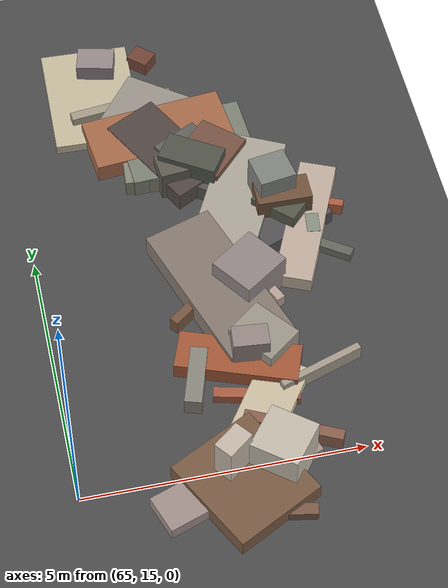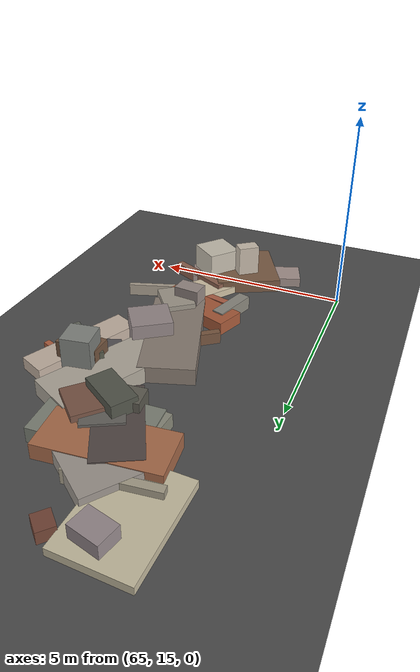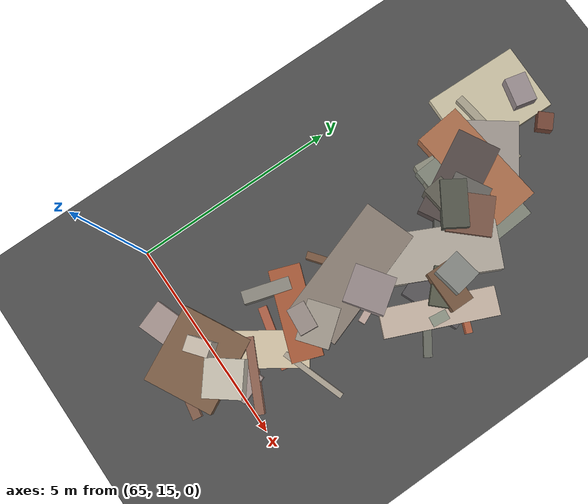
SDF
<sdf version="1.6">
 <world name="navitas_arena">
  <model name="ground_plane">
   <static>true</static>
   <link name="link">
    <collision name="collision">
     <geometry><plane><normal>0 0 1</normal><size>400 400</size></plane></geometry>
     <surface><friction><ode><mu>0.800</mu><mu2>0.800</mu2></ode></friction></surface>
    </collision>
    <visual name="visual">
     <cast_shadows>false</cast_shadows>
     <geometry><plane><normal>0 0 1</normal><size>400 400</size></plane></geometry>
     <material>
      <specular>0.04 0.04 0.04 1</specular>
      <script>
       <uri>file://media/materials/scripts/navitas_asphalt.material</uri>
       <name>Navitas/RealArenaAsphalt</name>
      </script>
     </material>
    </visual>
   </link>
  </model>
  <model name="deb_zor_40">
   <static>true</static>
   <pose>68.226 16.376 0.000 0 0 0</pose>
   <link name="link">
    <collision name="col_0">
     <pose>-0.002 -0.699 0.096 0.000 0.000 0.973</pose>
     <geometry><box><size>2.898 0.864 0.193</size></box></geometry>
    </collision>
    <visual name="vis_0">
     <pose>-0.002 -0.699 0.096 0.000 0.000 0.973</pose>
     <geometry><box><size>2.898 0.864 0.193</size></box></geometry>
     <material>
      <ambient>0.75 0.70 0.59 1</ambient>
      <diffuse>0.81 0.75 0.64 1</diffuse>
      <specular>0.05 0.05 0.045 1</specular>
     </material>
    </visual>
    <collision name="col_1">
     <pose>0.140 -0.033 0.094 0.000 0.000 -0.233</pose>
     <geometry><box><size>1.523 0.206 0.187</size></box></geometry>
    </collision>
    <visual name="vis_1">
     <pose>0.140 -0.033 0.094 0.000 0.000 -0.233</pose>
     <geometry><box><size>1.523 0.206 0.187</size></box></geometry>
     <material>
      <ambient>0.62 0.34 0.25 1</ambient>
      <diffuse>0.67 0.37 0.27 1</diffuse>
      <specular>0.05 0.05 0.045 1</specular>
     </material>
    </visual>
    <collision name="col_2">
     <pose>0.194 0.761 0.404 0.000 0.000 -0.092</pose>
     <geometry><box><size>0.649 0.437 0.809</size></box></geometry>
    </collision>
    <visual name="vis_2">
     <pose>0.194 0.761 0.404 0.000 0.000 -0.092</pose>
     <geometry><box><size>0.649 0.437 0.809</size></box></geometry>
     <material>
      <ambient>0.54 0.50 0.48 1</ambient>
      <diffuse>0.59 0.54 0.52 1</diffuse>
      <specular>0.05 0.05 0.045 1</specular>
     </material>
    </visual>
    <collision name="col_3">
     <pose>-0.839 0.446 0.183 0.000 0.000 1.275</pose>
     <geometry><box><size>1.146 0.309 0.365</size></box></geometry>
    </collision>
    <visual name="vis_3">
     <pose>-0.839 0.446 0.183 0.000 0.000 1.275</pose>
     <geometry><box><size>1.146 0.309 0.365</size></box></geometry>
     <material>
      <ambient>0.50 0.49 0.46 1</ambient>
      <diffuse>0.54 0.53 0.49 1</diffuse>
      <specular>0.05 0.05 0.045 1</specular>
     </material>
    </visual>
   </link>
  </model>
  <model name="deb_zor_46">
   <static>true</static>
   <pose>67.939 21.740 0.000 0 0 0</pose>
   <link name="link">
    <collision name="col_0">
     <pose>0.492 -0.057 0.188 0.000 0.000 0.809</pose>
     <geometry><box><size>1.128 0.798 0.376</size></box></geometry>
    </collision>
    <visual name="vis_0">
     <pose>0.492 -0.057 0.188 0.000 0.000 0.809</pose>
     <geometry><box><size>1.128 0.798 0.376</size></box></geometry>
     <material>
      <ambient>0.47 0.35 0.25 1</ambient>
      <diffuse>0.50 0.38 0.27 1</diffuse>
      <specular>0.05 0.05 0.045 1</specular>
     </material>
    </visual>
    <collision name="col_1">
     <pose>-0.100 0.235 0.192 0.000 0.000 2.061</pose>
     <geometry><box><size>2.197 1.077 0.384</size></box></geometry>
    </collision>
    <visual name="vis_1">
     <pose>-0.100 0.235 0.192 0.000 0.000 2.061</pose>
     <geometry><box><size>2.197 1.077 0.384</size></box></geometry>
     <material>
      <ambient>0.30 0.26 0.25 1</ambient>
      <diffuse>0.32 0.28 0.27 1</diffuse>
      <specular>0.05 0.05 0.045 1</specular>
     </material>
    </visual>
    <collision name="col_2">
     <pose>0.318 -0.268 0.369 0.000 0.000 2.578</pose>
     <geometry><box><size>1.129 0.616 0.739</size></box></geometry>
    </collision>
    <visual name="vis_2">
     <pose>0.318 -0.268 0.369 0.000 0.000 2.578</pose>
     <geometry><box><size>1.129 0.616 0.739</size></box></geometry>
     <material>
      <ambient>0.30 0.31 0.27 1</ambient>
      <diffuse>0.32 0.33 0.29 1</diffuse>
      <specular>0.05 0.05 0.045 1</specular>
     </material>
    </visual>
    <collision name="col_3">
     <pose>0.042 -0.341 0.309 0.000 0.000 0.113</pose>
     <geometry><box><size>0.805 0.523 0.619</size></box></geometry>
    </collision>
    <visual name="vis_3">
     <pose>0.042 -0.341 0.309 0.000 0.000 0.113</pose>
     <geometry><box><size>0.805 0.523 0.619</size></box></geometry>
     <material>
      <ambient>0.34 0.33 0.30 1</ambient>
      <diffuse>0.37 0.36 0.32 1</diffuse>
      <specular>0.05 0.05 0.045 1</specular>
     </material>
    </visual>
    <collision name="col_4">
     <pose>0.708 -0.065 0.267 0.000 0.000 0.824</pose>
     <geometry><box><size>1.078 0.964 0.534</size></box></geometry>
    </collision>
    <visual name="vis_4">
     <pose>0.708 -0.065 0.267 0.000 0.000 0.824</pose>
     <geometry><box><size>1.078 0.964 0.534</size></box></geometry>
     <material>
      <ambient>0.43 0.31 0.25 1</ambient>
      <diffuse>0.47 0.33 0.27 1</diffuse>
      <specular>0.05 0.05 0.045 1</specular>
     </material>
    </visual>
    <collision name="col_5">
     <pose>0.239 0.260 0.219 0.000 0.000 2.070</pose>
     <geometry><box><size>0.533 0.937 0.439</size></box></geometry>
    </collision>
    <visual name="vis_5">
     <pose>0.239 0.260 0.219 0.000 0.000 2.070</pose>
     <geometry><box><size>0.533 0.937 0.439</size></box></geometry>
     <material>
      <ambient>0.36 0.35 0.33 1</ambient>
      <diffuse>0.39 0.38 0.36 1</diffuse>
      <specular>0.05 0.05 0.045 1</specular>
     </material>
    </visual>
   </link>
  </model>
  <model name="deb_zor_49">
   <static>true</static>
   <pose>67.663 22.526 0.000 0 0 0</pose>
   <link name="link">
    <collision name="col_0">
     <pose>-0.438 0.760 0.175 0.000 0.000 3.270</pose>
     <geometry><box><size>2.010 0.194 0.351</size></box></geometry>
    </collision>
    <visual name="vis_0">
     <pose>-0.438 0.760 0.175 0.000 0.000 3.270</pose>
     <geometry><box><size>2.010 0.194 0.351</size></box></geometry>
     <material>
      <ambient>0.60 0.57 0.50 1</ambient>
      <diffuse>0.65 0.62 0.54 1</diffuse>
      <specular>0.05 0.05 0.045 1</specular>
     </material>
    </visual>
    <collision name="col_1">
     <pose>-0.066 -0.191 0.169 0.000 0.000 1.496</pose>
     <geometry><box><size>2.142 1.120 0.338</size></box></geometry>
    </collision>
    <visual name="vis_1">
     <pose>-0.066 -0.191 0.169 0.000 0.000 1.496</pose>
     <geometry><box><size>2.142 1.120 0.338</size></box></geometry>
     <material>
      <ambient>0.50 0.50 0.45 1</ambient>
      <diffuse>0.54 0.54 0.48 1</diffuse>
      <specular>0.05 0.05 0.045 1</specular>
     </material>
    </visual>
    <collision name="col_2">
     <pose>0.614 -0.462 0.185 0.000 0.000 3.203</pose>
     <geometry><box><size>2.415 1.467 0.369</size></box></geometry>
    </collision>
    <visual name="vis_2">
     <pose>0.614 -0.462 0.185 0.000 0.000 3.203</pose>
     <geometry><box><size>2.415 1.467 0.369</size></box></geometry>
     <material>
      <ambient>0.46 0.47 0.43 1</ambient>
      <diffuse>0.49 0.51 0.46 1</diffuse>
      <specular>0.05 0.05 0.045 1</specular>
     </material>
    </visual>
    <collision name="col_3">
     <pose>0.140 -0.040 0.186 0.000 0.000 3.249</pose>
     <geometry><box><size>2.728 1.170 0.373</size></box></geometry>
    </collision>
    <visual name="vis_3">
     <pose>0.140 -0.040 0.186 0.000 0.000 3.249</pose>
     <geometry><box><size>2.728 1.170 0.373</size></box></geometry>
     <material>
      <ambient>0.61 0.39 0.27 1</ambient>
      <diffuse>0.66 0.42 0.29 1</diffuse>
      <specular>0.05 0.05 0.045 1</specular>
     </material>
    </visual>
   </link>
  </model>
  <model name="deb_zor_80">
   <static>true</static>
   <pose>69.305 20.393 0.000 0 0 0</pose>
   <link name="link">
    <collision name="col_0">
     <pose>0.421 -0.129 0.362 0.000 0.000 -0.009</pose>
     <geometry><box><size>1.027 0.552 0.723</size></box></geometry>
    </collision>
    <visual name="vis_0">
     <pose>0.421 -0.129 0.362 0.000 0.000 -0.009</pose>
     <geometry><box><size>1.027 0.552 0.723</size></box></geometry>
     <material>
      <ambient>0.41 0.30 0.22 1</ambient>
      <diffuse>0.45 0.33 0.24 1</diffuse>
      <specular>0.05 0.05 0.045 1</specular>
     </material>
    </visual>
    <collision name="col_1">
     <pose>0.385 0.144 0.112 0.000 0.000 1.986</pose>
     <geometry><box><size>0.452 0.294 0.224</size></box></geometry>
    </collision>
    <visual name="vis_1">
     <pose>0.385 0.144 0.112 0.000 0.000 1.986</pose>
     <geometry><box><size>0.452 0.294 0.224</size></box></geometry>
     <material>
      <ambient>0.32 0.30 0.27 1</ambient>
      <diffuse>0.35 0.32 0.29 1</diffuse>
      <specular>0.05 0.05 0.045 1</specular>
     </material>
    </visual>
    <collision name="col_2">
     <pose>-0.458 0.287 0.167 0.000 0.000 -0.645</pose>
     <geometry><box><size>1.554 0.288 0.334</size></box></geometry>
    </collision>
    <visual name="vis_2">
     <pose>-0.458 0.287 0.167 0.000 0.000 -0.645</pose>
     <geometry><box><size>1.554 0.288 0.334</size></box></geometry>
     <material>
      <ambient>0.31 0.31 0.28 1</ambient>
      <diffuse>0.33 0.33 0.31 1</diffuse>
      <specular>0.05 0.05 0.045 1</specular>
     </material>
    </visual>
    <collision name="col_3">
     <pose>-0.360 -0.134 0.114 0.000 0.000 -0.156</pose>
     <geometry><box><size>0.489 0.237 0.228</size></box></geometry>
    </collision>
    <visual name="vis_3">
     <pose>-0.360 -0.134 0.114 0.000 0.000 -0.156</pose>
     <geometry><box><size>0.489 0.237 0.228</size></box></geometry>
     <material>
      <ambient>0.43 0.31 0.25 1</ambient>
      <diffuse>0.46 0.33 0.27 1</diffuse>
      <specular>0.05 0.05 0.045 1</specular>
     </material>
    </visual>
    <collision name="col_4">
     <pose>0.337 -0.249 0.286 0.000 0.000 0.808</pose>
     <geometry><box><size>0.499 0.914 0.573</size></box></geometry>
    </collision>
    <visual name="vis_4">
     <pose>0.337 -0.249 0.286 0.000 0.000 0.808</pose>
     <geometry><box><size>0.499 0.914 0.573</size></box></geometry>
     <material>
      <ambient>0.32 0.33 0.27 1</ambient>
      <diffuse>0.34 0.35 0.29 1</diffuse>
      <specular>0.05 0.05 0.045 1</specular>
     </material>
    </visual>
    <collision name="col_5">
     <pose>-0.378 0.109 0.203 0.000 0.000 1.113</pose>
     <geometry><box><size>2.975 1.182 0.406</size></box></geometry>
    </collision>
    <visual name="vis_5">
     <pose>-0.378 0.109 0.203 0.000 0.000 1.113</pose>
     <geometry><box><size>2.975 1.182 0.406</size></box></geometry>
     <material>
      <ambient>0.63 0.60 0.56 1</ambient>
      <diffuse>0.68 0.65 0.60 1</diffuse>
      <specular>0.05 0.05 0.045 1</specular>
     </material>
    </visual>
    <collision name="col_6">
     <pose>0.276 0.119 0.554 0.000 0.000 1.738</pose>
     <geometry><box><size>0.651 0.696 1.108</size></box></geometry>
    </collision>
    <visual name="vis_6">
     <pose>0.276 0.119 0.554 0.000 0.000 1.738</pose>
     <geometry><box><size>0.651 0.696 1.108</size></box></geometry>
     <material>
      <ambient>0.47 0.48 0.46 1</ambient>
      <diffuse>0.51 0.52 0.50 1</diffuse>
      <specular>0.05 0.05 0.045 1</specular>
     </material>
    </visual>
   </link>
  </model>
  <model name="deb_zor_191">
   <static>true</static>
   <pose>67.463 23.916 0.000 0 0 0</pose>
   <link name="link">
    <collision name="col_0">
     <pose>-0.752 -0.159 0.092 0.000 0.000 1.546</pose>
     <geometry><box><size>2.383 1.693 0.185</size></box></geometry>
    </collision>
    <visual name="vis_0">
     <pose>-0.752 -0.159 0.092 0.000 0.000 1.546</pose>
     <geometry><box><size>2.383 1.693 0.185</size></box></geometry>
     <material>
      <ambient>0.72 0.68 0.58 1</ambient>
      <diffuse>0.78 0.74 0.63 1</diffuse>
      <specular>0.05 0.05 0.045 1</specular>
     </material>
    </visual>
    <collision name="col_1">
     <pose>0.383 0.610 0.142 0.000 0.000 2.402</pose>
     <geometry><box><size>0.431 0.377 0.283</size></box></geometry>
    </collision>
    <visual name="vis_1">
     <pose>0.383 0.610 0.142 0.000 0.000 2.402</pose>
     <geometry><box><size>0.431 0.377 0.283</size></box></geometry>
     <material>
      <ambient>0.41 0.25 0.19 1</ambient>
      <diffuse>0.45 0.27 0.21 1</diffuse>
      <specular>0.05 0.05 0.045 1</specular>
     </material>
    </visual>
    <collision name="col_2">
     <pose>-0.546 0.511 0.255 0.000 0.000 1.338</pose>
     <geometry><box><size>0.526 0.718 0.510</size></box></geometry>
    </collision>
    <visual name="vis_2">
     <pose>-0.546 0.511 0.255 0.000 0.000 1.338</pose>
     <geometry><box><size>0.526 0.718 0.510</size></box></geometry>
     <material>
      <ambient>0.55 0.50 0.51 1</ambient>
      <diffuse>0.59 0.54 0.55 1</diffuse>
      <specular>0.05 0.05 0.045 1</specular>
     </material>
    </visual>
    <collision name="col_3">
     <pose>0.171 -0.939 0.176 0.000 0.000 2.503</pose>
     <geometry><box><size>1.401 1.439 0.352</size></box></geometry>
    </collision>
    <visual name="vis_3">
     <pose>0.171 -0.939 0.176 0.000 0.000 2.503</pose>
     <geometry><box><size>1.401 1.439 0.352</size></box></geometry>
     <material>
      <ambient>0.56 0.53 0.51 1</ambient>
      <diffuse>0.61 0.58 0.55 1</diffuse>
      <specular>0.05 0.05 0.045 1</specular>
     </material>
    </visual>
   </link>
  </model>
  <model name="deb_zor_236">
   <static>true</static>
   <pose>68.445 18.927 0.000 0 0 0</pose>
   <link name="link">
    <collision name="col_0">
     <pose>-0.393 -0.248 0.150 0.000 0.000 0.656</pose>
     <geometry><box><size>2.074 0.175 0.299</size></box></geometry>
    </collision>
    <visual name="vis_0">
     <pose>-0.393 -0.248 0.150 0.000 0.000 0.656</pose>
     <geometry><box><size>2.074 0.175 0.299</size></box></geometry>
     <material>
      <ambient>0.44 0.32 0.23 1</ambient>
      <diffuse>0.47 0.34 0.25 1</diffuse>
      <specular>0.05 0.05 0.045 1</specular>
     </material>
    </visual>
    <collision name="col_1">
     <pose>0.310 -0.184 0.384 0.000 0.000 2.183</pose>
     <geometry><box><size>0.898 0.986 0.769</size></box></geometry>
    </collision>
    <visual name="vis_1">
     <pose>0.310 -0.184 0.384 0.000 0.000 2.183</pose>
     <geometry><box><size>0.898 0.986 0.769</size></box></geometry>
     <material>
      <ambient>0.53 0.49 0.49 1</ambient>
      <diffuse>0.58 0.53 0.53 1</diffuse>
      <specular>0.05 0.05 0.045 1</specular>
     </material>
    </visual>
    <collision name="col_2">
     <pose>-0.253 0.175 0.100 0.000 0.000 1.828</pose>
     <geometry><box><size>1.695 1.126 0.199</size></box></geometry>
    </collision>
    <visual name="vis_2">
     <pose>-0.253 0.175 0.100 0.000 0.000 1.828</pose>
     <geometry><box><size>1.695 1.126 0.199</size></box></geometry>
     <material>
      <ambient>0.44 0.29 0.24 1</ambient>
      <diffuse>0.47 0.32 0.26 1</diffuse>
      <specular>0.05 0.05 0.045 1</specular>
     </material>
    </visual>
    <collision name="col_3">
     <pose>-0.085 0.228 0.181 0.000 0.000 1.741</pose>
     <geometry><box><size>1.838 0.297 0.363</size></box></geometry>
    </collision>
    <visual name="vis_3">
     <pose>-0.085 0.228 0.181 0.000 0.000 1.741</pose>
     <geometry><box><size>1.838 0.297 0.363</size></box></geometry>
     <material>
      <ambient>0.59 0.32 0.23 1</ambient>
      <diffuse>0.64 0.35 0.25 1</diffuse>
      <specular>0.05 0.05 0.045 1</specular>
     </material>
    </visual>
    <collision name="col_4">
     <pose>-0.260 -0.289 0.209 0.000 0.000 1.895</pose>
     <geometry><box><size>3.069 1.310 0.417</size></box></geometry>
    </collision>
    <visual name="vis_4">
     <pose>-0.260 -0.289 0.209 0.000 0.000 1.895</pose>
     <geometry><box><size>3.069 1.310 0.417</size></box></geometry>
     <material>
      <ambient>0.49 0.44 0.41 1</ambient>
      <diffuse>0.53 0.48 0.44 1</diffuse>
      <specular>0.05 0.05 0.045 1</specular>
     </material>
    </visual>
    <collision name="col_5">
     <pose>0.365 0.206 0.118 0.000 0.000 1.993</pose>
     <geometry><box><size>2.070 0.169 0.236</size></box></geometry>
    </collision>
    <visual name="vis_5">
     <pose>0.365 0.206 0.118 0.000 0.000 1.993</pose>
     <geometry><box><size>2.070 0.169 0.236</size></box></geometry>
     <material>
      <ambient>0.67 0.59 0.55 1</ambient>
      <diffuse>0.73 0.64 0.60 1</diffuse>
      <specular>0.05 0.05 0.045 1</specular>
     </material>
    </visual>
   </link>
  </model>
  <model name="deb_zor_251">
   <static>true</static>
   <pose>68.559 14.669 0.000 0 0 0</pose>
   <link name="link">
    <collision name="col_0">
     <pose>-0.921 0.268 0.567 0.000 0.000 0.666</pose>
     <geometry><box><size>0.558 0.362 1.134</size></box></geometry>
    </collision>
    <visual name="vis_0">
     <pose>-0.921 0.268 0.567 0.000 0.000 0.666</pose>
     <geometry><box><size>0.558 0.362 1.134</size></box></geometry>
     <material>
      <ambient>0.72 0.68 0.62 1</ambient>
      <diffuse>0.78 0.73 0.67 1</diffuse>
      <specular>0.05 0.05 0.045 1</specular>
     </material>
    </visual>
    <collision name="col_1">
     <pose>-0.039 0.313 0.465 0.000 0.000 0.908</pose>
     <geometry><box><size>0.883 0.885 0.930</size></box></geometry>
    </collision>
    <visual name="vis_1">
     <pose>-0.039 0.313 0.465 0.000 0.000 0.908</pose>
     <geometry><box><size>0.883 0.885 0.930</size></box></geometry>
     <material>
      <ambient>0.71 0.69 0.63 1</ambient>
      <diffuse>0.77 0.74 0.68 1</diffuse>
      <specular>0.05 0.05 0.045 1</specular>
     </material>
    </visual>
    <collision name="col_2">
     <pose>0.266 0.843 0.153 0.000 0.000 -0.450</pose>
     <geometry><box><size>1.765 0.203 0.306</size></box></geometry>
    </collision>
    <visual name="vis_2">
     <pose>0.266 0.843 0.153 0.000 0.000 -0.450</pose>
     <geometry><box><size>1.765 0.203 0.306</size></box></geometry>
     <material>
      <ambient>0.50 0.35 0.29 1</ambient>
      <diffuse>0.55 0.38 0.31 1</diffuse>
      <specular>0.05 0.05 0.045 1</specular>
     </material>
    </visual>
    <collision name="col_3">
     <pose>-0.877 0.133 0.123 0.000 0.000 0.343</pose>
     <geometry><box><size>3.005 0.721 0.246</size></box></geometry>
    </collision>
    <visual name="vis_3">
     <pose>-0.877 0.133 0.123 0.000 0.000 0.343</pose>
     <geometry><box><size>3.005 0.721 0.246</size></box></geometry>
     <material>
      <ambient>0.59 0.53 0.51 1</ambient>
      <diffuse>0.64 0.57 0.55 1</diffuse>
      <specular>0.05 0.05 0.045 1</specular>
     </material>
    </visual>
    <collision name="col_4">
     <pose>-0.513 -0.451 0.083 0.000 0.000 -0.155</pose>
     <geometry><box><size>1.067 0.179 0.166</size></box></geometry>
    </collision>
    <visual name="vis_4">
     <pose>-0.513 -0.451 0.083 0.000 0.000 -0.155</pose>
     <geometry><box><size>1.067 0.179 0.166</size></box></geometry>
     <material>
      <ambient>0.70 0.66 0.60 1</ambient>
      <diffuse>0.75 0.72 0.65 1</diffuse>
      <specular>0.05 0.05 0.045 1</specular>
     </material>
    </visual>
    <collision name="col_5">
     <pose>-0.767 -0.009 0.169 0.000 0.000 2.052</pose>
     <geometry><box><size>1.886 1.715 0.339</size></box></geometry>
    </collision>
    <visual name="vis_5">
     <pose>-0.767 -0.009 0.169 0.000 0.000 2.052</pose>
     <geometry><box><size>1.886 1.715 0.339</size></box></geometry>
     <material>
      <ambient>0.45 0.33 0.25 1</ambient>
      <diffuse>0.48 0.36 0.27 1</diffuse>
      <specular>0.05 0.05 0.045 1</specular>
     </material>
    </visual>
    <collision name="col_6">
     <pose>-0.253 -0.662 0.093 0.000 0.000 -0.174</pose>
     <geometry><box><size>1.145 0.216 0.186</size></box></geometry>
    </collision>
    <visual name="vis_6">
     <pose>-0.253 -0.662 0.093 0.000 0.000 -0.174</pose>
     <geometry><box><size>1.145 0.216 0.186</size></box></geometry>
     <material>
      <ambient>0.46 0.33 0.27 1</ambient>
      <diffuse>0.50 0.36 0.29 1</diffuse>
      <specular>0.05 0.05 0.045 1</specular>
     </material>
    </visual>
   </link>
  </model>
  <model name="deb_zor_286">
   <static>true</static>
   <pose>69.847 20.049 0.000 0 0 0</pose>
   <link name="link">
    <collision name="col_0">
     <pose>0.509 0.221 0.132 0.000 0.000 -0.388</pose>
     <geometry><box><size>1.083 0.156 0.264</size></box></geometry>
    </collision>
    <visual name="vis_0">
     <pose>0.509 0.221 0.132 0.000 0.000 -0.388</pose>
     <geometry><box><size>1.083 0.156 0.264</size></box></geometry>
     <material>
      <ambient>0.63 0.34 0.24 1</ambient>
      <diffuse>0.68 0.37 0.25 1</diffuse>
      <specular>0.05 0.05 0.045 1</specular>
     </material>
    </visual>
    <collision name="col_1">
     <pose>0.333 -0.352 0.159 0.000 0.000 1.442</pose>
     <geometry><box><size>0.421 0.246 0.317</size></box></geometry>
    </collision>
    <visual name="vis_1">
     <pose>0.333 -0.352 0.159 0.000 0.000 1.442</pose>
     <geometry><box><size>0.421 0.246 0.317</size></box></geometry>
     <material>
      <ambient>0.50 0.53 0.47 1</ambient>
      <diffuse>0.54 0.57 0.51 1</diffuse>
      <specular>0.05 0.05 0.045 1</specular>
     </material>
    </visual>
    <collision name="col_2">
     <pose>0.224 -0.269 0.156 0.000 0.000 1.162</pose>
     <geometry><box><size>2.732 0.690 0.313</size></box></geometry>
    </collision>
    <visual name="vis_2">
     <pose>0.224 -0.269 0.156 0.000 0.000 1.162</pose>
     <geometry><box><size>2.732 0.690 0.313</size></box></geometry>
     <material>
      <ambient>0.70 0.64 0.59 1</ambient>
      <diffuse>0.76 0.69 0.63 1</diffuse>
      <specular>0.05 0.05 0.045 1</specular>
     </material>
    </visual>
    <collision name="col_3">
     <pose>-0.074 -0.093 0.151 0.000 0.000 0.385</pose>
     <geometry><box><size>1.479 0.771 0.303</size></box></geometry>
    </collision>
    <visual name="vis_3">
     <pose>-0.074 -0.093 0.151 0.000 0.000 0.385</pose>
     <geometry><box><size>1.479 0.771 0.303</size></box></geometry>
     <material>
      <ambient>0.30 0.30 0.31 1</ambient>
      <diffuse>0.33 0.32 0.33 1</diffuse>
      <specular>0.05 0.05 0.045 1</specular>
     </material>
    </visual>
    <collision name="col_4">
     <pose>0.537 0.299 0.125 0.000 0.000 1.418</pose>
     <geometry><box><size>0.353 0.335 0.250</size></box></geometry>
    </collision>
    <visual name="vis_4">
     <pose>0.537 0.299 0.125 0.000 0.000 1.418</pose>
     <geometry><box><size>0.353 0.335 0.250</size></box></geometry>
     <material>
      <ambient>0.71 0.68 0.61 1</ambient>
      <diffuse>0.77 0.73 0.66 1</diffuse>
      <specular>0.05 0.05 0.045 1</specular>
     </material>
    </visual>
    <collision name="col_5">
     <pose>0.046 -0.478 0.088 0.000 0.000 -0.600</pose>
     <geometry><box><size>2.098 0.195 0.175</size></box></geometry>
    </collision>
    <visual name="vis_5">
     <pose>0.046 -0.478 0.088 0.000 0.000 -0.600</pose>
     <geometry><box><size>2.098 0.195 0.175</size></box></geometry>
     <material>
      <ambient>0.37 0.38 0.34 1</ambient>
      <diffuse>0.40 0.41 0.37 1</diffuse>
      <specular>0.05 0.05 0.045 1</specular>
     </material>
    </visual>
   </link>
  </model>
  <model name="deb_zor_312">
   <static>true</static>
   <pose>68.519 16.996 0.000 0 0 0</pose>
   <link name="link">
    <collision name="col_0">
     <pose>0.193 0.359 0.275 0.000 0.000 2.235</pose>
     <geometry><box><size>0.971 0.785 0.551</size></box></geometry>
    </collision>
    <visual name="vis_0">
     <pose>0.193 0.359 0.275 0.000 0.000 2.235</pose>
     <geometry><box><size>0.971 0.785 0.551</size></box></geometry>
     <material>
      <ambient>0.58 0.55 0.50 1</ambient>
      <diffuse>0.62 0.59 0.54 1</diffuse>
      <specular>0.05 0.05 0.045 1</specular>
     </material>
    </visual>
    <collision name="col_1">
     <pose>0.434 0.316 0.071 0.000 0.000 4.336</pose>
     <geometry><box><size>0.437 0.345 0.142</size></box></geometry>
    </collision>
    <visual name="vis_1">
     <pose>0.434 0.316 0.071 0.000 0.000 4.336</pose>
     <geometry><box><size>0.437 0.345 0.142</size></box></geometry>
     <material>
      <ambient>0.63 0.39 0.26 1</ambient>
      <diffuse>0.68 0.42 0.28 1</diffuse>
      <specular>0.05 0.05 0.045 1</specular>
     </material>
    </visual>
    <collision name="col_2">
     <pose>1.056 -0.386 0.156 0.000 0.000 3.466</pose>
     <geometry><box><size>1.601 0.126 0.313</size></box></geometry>
    </collision>
    <visual name="vis_2">
     <pose>1.056 -0.386 0.156 0.000 0.000 3.466</pose>
     <geometry><box><size>1.601 0.126 0.313</size></box></geometry>
     <material>
      <ambient>0.61 0.58 0.51 1</ambient>
      <diffuse>0.66 0.62 0.56 1</diffuse>
      <specular>0.05 0.05 0.045 1</specular>
     </material>
    </visual>
    <collision name="col_3">
     <pose>-0.324 0.082 0.165 0.000 0.000 2.794</pose>
     <geometry><box><size>2.190 0.753 0.330</size></box></geometry>
    </collision>
    <visual name="vis_3">
     <pose>-0.324 0.082 0.165 0.000 0.000 2.794</pose>
     <geometry><box><size>2.190 0.753 0.330</size></box></geometry>
     <material>
      <ambient>0.61 0.32 0.20 1</ambient>
      <diffuse>0.65 0.35 0.22 1</diffuse>
      <specular>0.05 0.05 0.045 1</specular>
     </material>
    </visual>
   </link>
  </model>
 </world>
</sdf>
